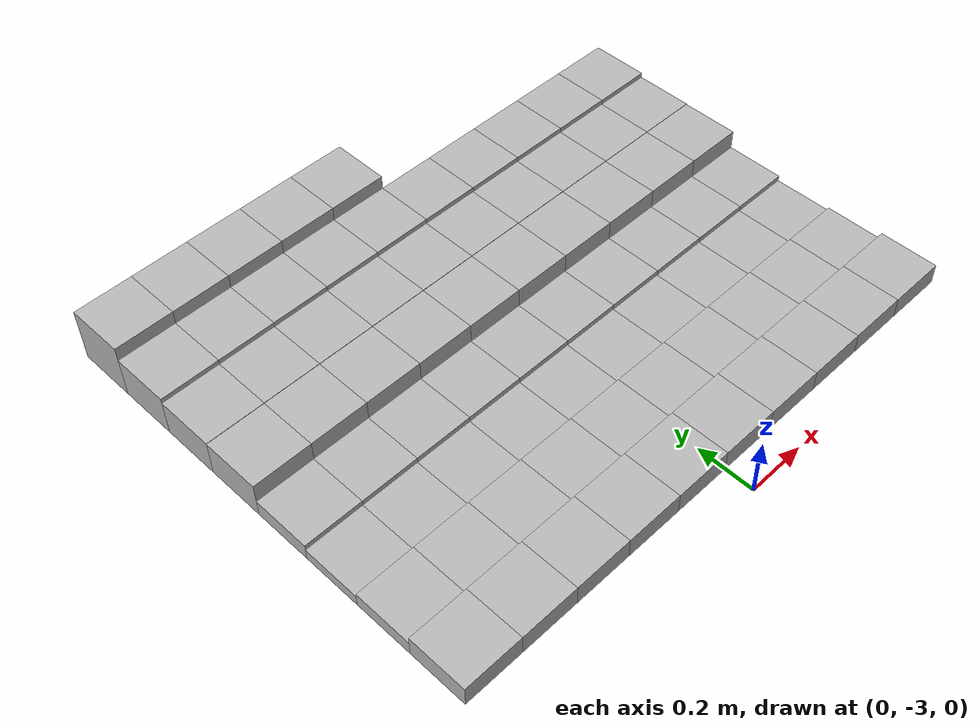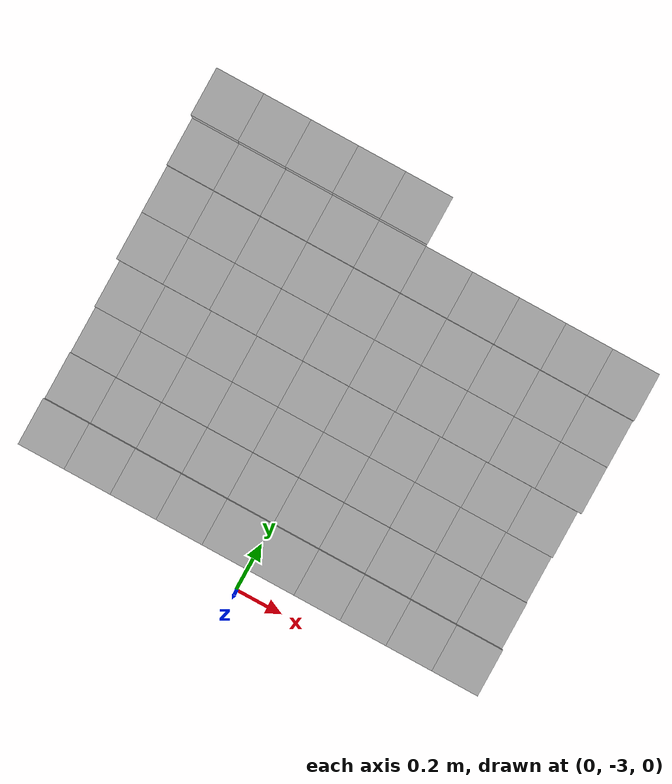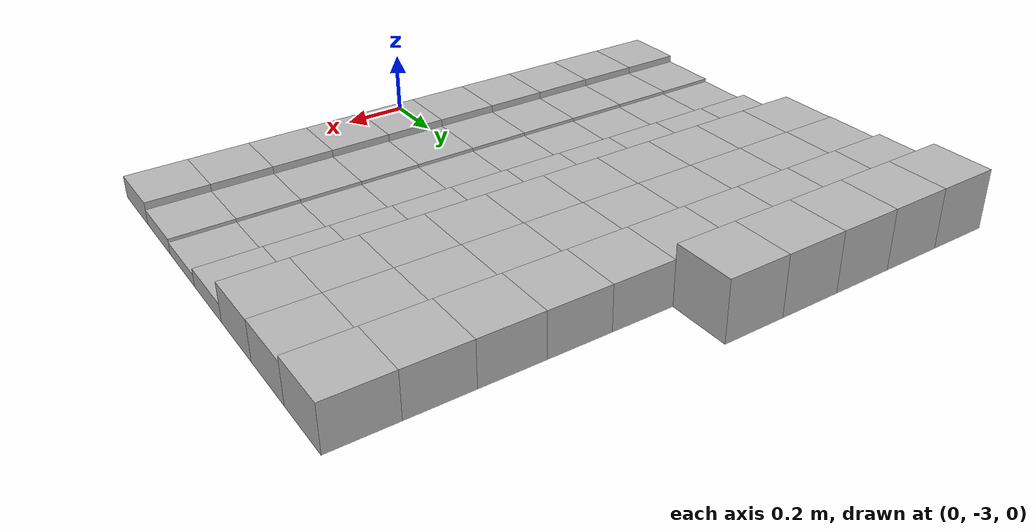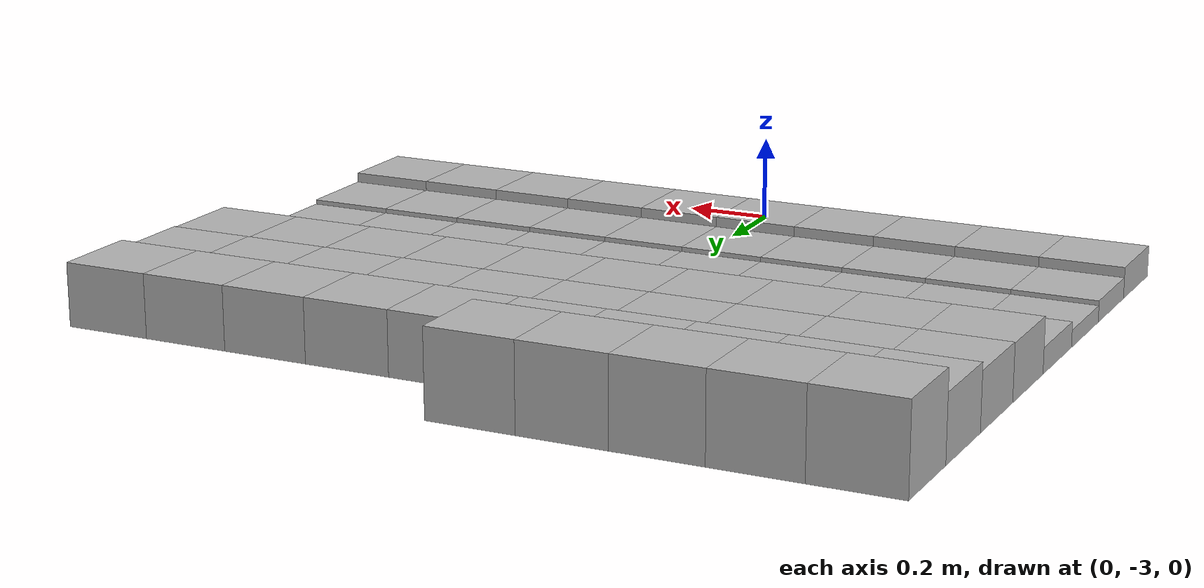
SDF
<sdf version="1.6">
 <model name="Terrain">
  <static>true</static>
  <link name="box_7_0">
   <pose>-0.9 -1.4 0.0967785819383 0 0 0</pose>
   <inertial>
    <mass>1.0</mass>
    <inertia><ixx>0.0</ixx><ixy>0.0</ixy><ixz>0.0</ixz><iyy>0.0</iyy><iyz>0.0</iyz><izz>0.0</izz></inertia>
   </inertial>
   <collision name="collision"><geometry><box><size>0.2 0.2 0.193557163877</size></box></geometry></collision>
   <visual name="visual"><geometry><box><size>0.2 0.2 0.193557163877</size></box></geometry></visual>
  </link>
  <link name="box_7_1">
   <pose>-0.7 -1.4 0.0967785819383 0 0 0</pose>
   <inertial>
    <mass>1.0</mass>
    <inertia><ixx>0.0</ixx><ixy>0.0</ixy><ixz>0.0</ixz><iyy>0.0</iyy><iyz>0.0</iyz><izz>0.0</izz></inertia>
   </inertial>
   <collision name="collision"><geometry><box><size>0.2 0.2 0.193557163877</size></box></geometry></collision>
   <visual name="visual"><geometry><box><size>0.2 0.2 0.193557163877</size></box></geometry></visual>
  </link>
  <link name="box_7_2">
   <pose>-0.5 -1.4 0.0967785819383 0 0 0</pose>
   <inertial>
    <mass>1.0</mass>
    <inertia><ixx>0.0</ixx><ixy>0.0</ixy><ixz>0.0</ixz><iyy>0.0</iyy><iyz>0.0</iyz><izz>0.0</izz></inertia>
   </inertial>
   <collision name="collision"><geometry><box><size>0.2 0.2 0.193557163877</size></box></geometry></collision>
   <visual name="visual"><geometry><box><size>0.2 0.2 0.193557163877</size></box></geometry></visual>
  </link>
  <link name="box_7_3">
   <pose>-0.3 -1.4 0.0967785819383 0 0 0</pose>
   <inertial>
    <mass>1.0</mass>
    <inertia><ixx>0.0</ixx><ixy>0.0</ixy><ixz>0.0</ixz><iyy>0.0</iyy><iyz>0.0</iyz><izz>0.0</izz></inertia>
   </inertial>
   <collision name="collision"><geometry><box><size>0.2 0.2 0.193557163877</size></box></geometry></collision>
   <visual name="visual"><geometry><box><size>0.2 0.2 0.193557163877</size></box></geometry></visual>
  </link>
  <link name="box_7_4">
   <pose>-0.1 -1.4 0.0967785819383 0 0 0</pose>
   <inertial>
    <mass>1.0</mass>
    <inertia><ixx>0.0</ixx><ixy>0.0</ixy><ixz>0.0</ixz><iyy>0.0</iyy><iyz>0.0</iyz><izz>0.0</izz></inertia>
   </inertial>
   <collision name="collision"><geometry><box><size>0.2 0.2 0.193557163877</size></box></geometry></collision>
   <visual name="visual"><geometry><box><size>0.2 0.2 0.193557163877</size></box></geometry></visual>
  </link>
  <link name="box_8_0">
   <pose>-0.9 -1.6 0.0724558491986 0 0 0</pose>
   <inertial>
    <mass>1.0</mass>
    <inertia><ixx>0.0</ixx><ixy>0.0</ixy><ixz>0.0</ixz><iyy>0.0</iyy><iyz>0.0</iyz><izz>0.0</izz></inertia>
   </inertial>
   <collision name="collision"><geometry><box><size>0.2 0.2 0.144911698397</size></box></geometry></collision>
   <visual name="visual"><geometry><box><size>0.2 0.2 0.144911698397</size></box></geometry></visual>
  </link>
  <link name="box_8_1">
   <pose>-0.7 -1.6 0.0724558491986 0 0 0</pose>
   <inertial>
    <mass>1.0</mass>
    <inertia><ixx>0.0</ixx><ixy>0.0</ixy><ixz>0.0</ixz><iyy>0.0</iyy><iyz>0.0</iyz><izz>0.0</izz></inertia>
   </inertial>
   <collision name="collision"><geometry><box><size>0.2 0.2 0.144911698397</size></box></geometry></collision>
   <visual name="visual"><geometry><box><size>0.2 0.2 0.144911698397</size></box></geometry></visual>
  </link>
  <link name="box_8_2">
   <pose>-0.5 -1.6 0.0724558491986 0 0 0</pose>
   <inertial>
    <mass>1.0</mass>
    <inertia><ixx>0.0</ixx><ixy>0.0</ixy><ixz>0.0</ixz><iyy>0.0</iyy><iyz>0.0</iyz><izz>0.0</izz></inertia>
   </inertial>
   <collision name="collision"><geometry><box><size>0.2 0.2 0.144911698397</size></box></geometry></collision>
   <visual name="visual"><geometry><box><size>0.2 0.2 0.144911698397</size></box></geometry></visual>
  </link>
  <link name="box_8_3">
   <pose>-0.3 -1.6 0.0724558491986 0 0 0</pose>
   <inertial>
    <mass>1.0</mass>
    <inertia><ixx>0.0</ixx><ixy>0.0</ixy><ixz>0.0</ixz><iyy>0.0</iyy><iyz>0.0</iyz><izz>0.0</izz></inertia>
   </inertial>
   <collision name="collision"><geometry><box><size>0.2 0.2 0.144911698397</size></box></geometry></collision>
   <visual name="visual"><geometry><box><size>0.2 0.2 0.144911698397</size></box></geometry></visual>
  </link>
  <link name="box_8_4">
   <pose>-0.1 -1.6 0.0724558491986 0 0 0</pose>
   <inertial>
    <mass>1.0</mass>
    <inertia><ixx>0.0</ixx><ixy>0.0</ixy><ixz>0.0</ixz><iyy>0.0</iyy><iyz>0.0</iyz><izz>0.0</izz></inertia>
   </inertial>
   <collision name="collision"><geometry><box><size>0.2 0.2 0.144911698397</size></box></geometry></collision>
   <visual name="visual"><geometry><box><size>0.2 0.2 0.144911698397</size></box></geometry></visual>
  </link>
  <link name="box_8_5">
   <pose>0.1 -1.6 0.0724558491986 0 0 0</pose>
   <inertial>
    <mass>1.0</mass>
    <inertia><ixx>0.0</ixx><ixy>0.0</ixy><ixz>0.0</ixz><iyy>0.0</iyy><iyz>0.0</iyz><izz>0.0</izz></inertia>
   </inertial>
   <collision name="collision"><geometry><box><size>0.2 0.2 0.144911698397</size></box></geometry></collision>
   <visual name="visual"><geometry><box><size>0.2 0.2 0.144911698397</size></box></geometry></visual>
  </link>
  <link name="box_8_6">
   <pose>0.3 -1.6 0.0724558491986 0 0 0</pose>
   <inertial>
    <mass>1.0</mass>
    <inertia><ixx>0.0</ixx><ixy>0.0</ixy><ixz>0.0</ixz><iyy>0.0</iyy><iyz>0.0</iyz><izz>0.0</izz></inertia>
   </inertial>
   <collision name="collision"><geometry><box><size>0.2 0.2 0.144911698397</size></box></geometry></collision>
   <visual name="visual"><geometry><box><size>0.2 0.2 0.144911698397</size></box></geometry></visual>
  </link>
  <link name="box_8_7">
   <pose>0.5 -1.6 0.0724558491986 0 0 0</pose>
   <inertial>
    <mass>1.0</mass>
    <inertia><ixx>0.0</ixx><ixy>0.0</ixy><ixz>0.0</ixz><iyy>0.0</iyy><iyz>0.0</iyz><izz>0.0</izz></inertia>
   </inertial>
   <collision name="collision"><geometry><box><size>0.2 0.2 0.144911698397</size></box></geometry></collision>
   <visual name="visual"><geometry><box><size>0.2 0.2 0.144911698397</size></box></geometry></visual>
  </link>
  <link name="box_8_8">
   <pose>0.7 -1.6 0.0724558491986 0 0 0</pose>
   <inertial>
    <mass>1.0</mass>
    <inertia><ixx>0.0</ixx><ixy>0.0</ixy><ixz>0.0</ixz><iyy>0.0</iyy><iyz>0.0</iyz><izz>0.0</izz></inertia>
   </inertial>
   <collision name="collision"><geometry><box><size>0.2 0.2 0.144911698397</size></box></geometry></collision>
   <visual name="visual"><geometry><box><size>0.2 0.2 0.144911698397</size></box></geometry></visual>
  </link>
  <link name="box_8_9">
   <pose>0.9 -1.6 0.0724558491986 0 0 0</pose>
   <inertial>
    <mass>1.0</mass>
    <inertia><ixx>0.0</ixx><ixy>0.0</ixy><ixz>0.0</ixz><iyy>0.0</iyy><iyz>0.0</iyz><izz>0.0</izz></inertia>
   </inertial>
   <collision name="collision"><geometry><box><size>0.2 0.2 0.144911698397</size></box></geometry></collision>
   <visual name="visual"><geometry><box><size>0.2 0.2 0.144911698397</size></box></geometry></visual>
  </link>
  <link name="box_9_0">
   <pose>-0.9 -1.8 0.0637855316115 0 0 0</pose>
   <inertial>
    <mass>1.0</mass>
    <inertia><ixx>0.0</ixx><ixy>0.0</ixy><ixz>0.0</ixz><iyy>0.0</iyy><iyz>0.0</iyz><izz>0.0</izz></inertia>
   </inertial>
   <collision name="collision"><geometry><box><size>0.2 0.2 0.127571063223</size></box></geometry></collision>
   <visual name="visual"><geometry><box><size>0.2 0.2 0.127571063223</size></box></geometry></visual>
  </link>
  <link name="box_9_1">
   <pose>-0.7 -1.8 0.0637855316115 0 0 0</pose>
   <inertial>
    <mass>1.0</mass>
    <inertia><ixx>0.0</ixx><ixy>0.0</ixy><ixz>0.0</ixz><iyy>0.0</iyy><iyz>0.0</iyz><izz>0.0</izz></inertia>
   </inertial>
   <collision name="collision"><geometry><box><size>0.2 0.2 0.127571063223</size></box></geometry></collision>
   <visual name="visual"><geometry><box><size>0.2 0.2 0.127571063223</size></box></geometry></visual>
  </link>
  <link name="box_9_2">
   <pose>-0.5 -1.8 0.0637855316115 0 0 0</pose>
   <inertial>
    <mass>1.0</mass>
    <inertia><ixx>0.0</ixx><ixy>0.0</ixy><ixz>0.0</ixz><iyy>0.0</iyy><iyz>0.0</iyz><izz>0.0</izz></inertia>
   </inertial>
   <collision name="collision"><geometry><box><size>0.2 0.2 0.127571063223</size></box></geometry></collision>
   <visual name="visual"><geometry><box><size>0.2 0.2 0.127571063223</size></box></geometry></visual>
  </link>
  <link name="box_9_3">
   <pose>-0.3 -1.8 0.0637855316115 0 0 0</pose>
   <inertial>
    <mass>1.0</mass>
    <inertia><ixx>0.0</ixx><ixy>0.0</ixy><ixz>0.0</ixz><iyy>0.0</iyy><iyz>0.0</iyz><izz>0.0</izz></inertia>
   </inertial>
   <collision name="collision"><geometry><box><size>0.2 0.2 0.127571063223</size></box></geometry></collision>
   <visual name="visual"><geometry><box><size>0.2 0.2 0.127571063223</size></box></geometry></visual>
  </link>
  <link name="box_9_4">
   <pose>-0.1 -1.8 0.0637855316115 0 0 0</pose>
   <inertial>
    <mass>1.0</mass>
    <inertia><ixx>0.0</ixx><ixy>0.0</ixy><ixz>0.0</ixz><iyy>0.0</iyy><iyz>0.0</iyz><izz>0.0</izz></inertia>
   </inertial>
   <collision name="collision"><geometry><box><size>0.2 0.2 0.127571063223</size></box></geometry></collision>
   <visual name="visual"><geometry><box><size>0.2 0.2 0.127571063223</size></box></geometry></visual>
  </link>
  <link name="box_9_5">
   <pose>0.1 -1.8 0.0637855316115 0 0 0</pose>
   <inertial>
    <mass>1.0</mass>
    <inertia><ixx>0.0</ixx><ixy>0.0</ixy><ixz>0.0</ixz><iyy>0.0</iyy><iyz>0.0</iyz><izz>0.0</izz></inertia>
   </inertial>
   <collision name="collision"><geometry><box><size>0.2 0.2 0.127571063223</size></box></geometry></collision>
   <visual name="visual"><geometry><box><size>0.2 0.2 0.127571063223</size></box></geometry></visual>
  </link>
  <link name="box_9_6">
   <pose>0.3 -1.8 0.0637855316115 0 0 0</pose>
   <inertial>
    <mass>1.0</mass>
    <inertia><ixx>0.0</ixx><ixy>0.0</ixy><ixz>0.0</ixz><iyy>0.0</iyy><iyz>0.0</iyz><izz>0.0</izz></inertia>
   </inertial>
   <collision name="collision"><geometry><box><size>0.2 0.2 0.127571063223</size></box></geometry></collision>
   <visual name="visual"><geometry><box><size>0.2 0.2 0.127571063223</size></box></geometry></visual>
  </link>
  <link name="box_9_7">
   <pose>0.5 -1.8 0.0637855316115 0 0 0</pose>
   <inertial>
    <mass>1.0</mass>
    <inertia><ixx>0.0</ixx><ixy>0.0</ixy><ixz>0.0</ixz><iyy>0.0</iyy><iyz>0.0</iyz><izz>0.0</izz></inertia>
   </inertial>
   <collision name="collision"><geometry><box><size>0.2 0.2 0.127571063223</size></box></geometry></collision>
   <visual name="visual"><geometry><box><size>0.2 0.2 0.127571063223</size></box></geometry></visual>
  </link>
  <link name="box_9_8">
   <pose>0.7 -1.8 0.0637855316115 0 0 0</pose>
   <inertial>
    <mass>1.0</mass>
    <inertia><ixx>0.0</ixx><ixy>0.0</ixy><ixz>0.0</ixz><iyy>0.0</iyy><iyz>0.0</iyz><izz>0.0</izz></inertia>
   </inertial>
   <collision name="collision"><geometry><box><size>0.2 0.2 0.127571063223</size></box></geometry></collision>
   <visual name="visual"><geometry><box><size>0.2 0.2 0.127571063223</size></box></geometry></visual>
  </link>
  <link name="box_9_9">
   <pose>0.9 -1.8 0.0637855316115 0 0 0</pose>
   <inertial>
    <mass>1.0</mass>
    <inertia><ixx>0.0</ixx><ixy>0.0</ixy><ixz>0.0</ixz><iyy>0.0</iyy><iyz>0.0</iyz><izz>0.0</izz></inertia>
   </inertial>
   <collision name="collision"><geometry><box><size>0.2 0.2 0.127571063223</size></box></geometry></collision>
   <visual name="visual"><geometry><box><size>0.2 0.2 0.127571063223</size></box></geometry></visual>
  </link>
  <link name="box_10_0">
   <pose>-0.9 -2.0 0.0626749102557 0 0 0</pose>
   <inertial>
    <mass>1.0</mass>
    <inertia><ixx>0.0</ixx><ixy>0.0</ixy><ixz>0.0</ixz><iyy>0.0</iyy><iyz>0.0</iyz><izz>0.0</izz></inertia>
   </inertial>
   <collision name="collision"><geometry><box><size>0.2 0.2 0.125349820511</size></box></geometry></collision>
   <visual name="visual"><geometry><box><size>0.2 0.2 0.125349820511</size></box></geometry></visual>
  </link>
  <link name="box_10_1">
   <pose>-0.7 -2.0 0.0626749102557 0 0 0</pose>
   <inertial>
    <mass>1.0</mass>
    <inertia><ixx>0.0</ixx><ixy>0.0</ixy><ixz>0.0</ixz><iyy>0.0</iyy><iyz>0.0</iyz><izz>0.0</izz></inertia>
   </inertial>
   <collision name="collision"><geometry><box><size>0.2 0.2 0.125349820511</size></box></geometry></collision>
   <visual name="visual"><geometry><box><size>0.2 0.2 0.125349820511</size></box></geometry></visual>
  </link>
  <link name="box_10_2">
   <pose>-0.5 -2.0 0.0626749102557 0 0 0</pose>
   <inertial>
    <mass>1.0</mass>
    <inertia><ixx>0.0</ixx><ixy>0.0</ixy><ixz>0.0</ixz><iyy>0.0</iyy><iyz>0.0</iyz><izz>0.0</izz></inertia>
   </inertial>
   <collision name="collision"><geometry><box><size>0.2 0.2 0.125349820511</size></box></geometry></collision>
   <visual name="visual"><geometry><box><size>0.2 0.2 0.125349820511</size></box></geometry></visual>
  </link>
  <link name="box_10_3">
   <pose>-0.3 -2.0 0.0626749102557 0 0 0</pose>
   <inertial>
    <mass>1.0</mass>
    <inertia><ixx>0.0</ixx><ixy>0.0</ixy><ixz>0.0</ixz><iyy>0.0</iyy><iyz>0.0</iyz><izz>0.0</izz></inertia>
   </inertial>
   <collision name="collision"><geometry><box><size>0.2 0.2 0.125349820511</size></box></geometry></collision>
   <visual name="visual"><geometry><box><size>0.2 0.2 0.125349820511</size></box></geometry></visual>
  </link>
  <link name="box_10_4">
   <pose>-0.1 -2.0 0.0626749102557 0 0 0</pose>
   <inertial>
    <mass>1.0</mass>
    <inertia><ixx>0.0</ixx><ixy>0.0</ixy><ixz>0.0</ixz><iyy>0.0</iyy><iyz>0.0</iyz><izz>0.0</izz></inertia>
   </inertial>
   <collision name="collision"><geometry><box><size>0.2 0.2 0.125349820511</size></box></geometry></collision>
   <visual name="visual"><geometry><box><size>0.2 0.2 0.125349820511</size></box></geometry></visual>
  </link>
  <link name="box_10_5">
   <pose>0.1 -2.0 0.0626749102557 0 0 0</pose>
   <inertial>
    <mass>1.0</mass>
    <inertia><ixx>0.0</ixx><ixy>0.0</ixy><ixz>0.0</ixz><iyy>0.0</iyy><iyz>0.0</iyz><izz>0.0</izz></inertia>
   </inertial>
   <collision name="collision"><geometry><box><size>0.2 0.2 0.125349820511</size></box></geometry></collision>
   <visual name="visual"><geometry><box><size>0.2 0.2 0.125349820511</size></box></geometry></visual>
  </link>
  <link name="box_10_6">
   <pose>0.3 -2.0 0.0626749102557 0 0 0</pose>
   <inertial>
    <mass>1.0</mass>
    <inertia><ixx>0.0</ixx><ixy>0.0</ixy><ixz>0.0</ixz><iyy>0.0</iyy><iyz>0.0</iyz><izz>0.0</izz></inertia>
   </inertial>
   <collision name="collision"><geometry><box><size>0.2 0.2 0.125349820511</size></box></geometry></collision>
   <visual name="visual"><geometry><box><size>0.2 0.2 0.125349820511</size></box></geometry></visual>
  </link>
  <link name="box_10_7">
   <pose>0.5 -2.0 0.0626749102557 0 0 0</pose>
   <inertial>
    <mass>1.0</mass>
    <inertia><ixx>0.0</ixx><ixy>0.0</ixy><ixz>0.0</ixz><iyy>0.0</iyy><iyz>0.0</iyz><izz>0.0</izz></inertia>
   </inertial>
   <collision name="collision"><geometry><box><size>0.2 0.2 0.125349820511</size></box></geometry></collision>
   <visual name="visual"><geometry><box><size>0.2 0.2 0.125349820511</size></box></geometry></visual>
  </link>
  <link name="box_10_8">
   <pose>0.7 -2.0 0.0626749102557 0 0 0</pose>
   <inertial>
    <mass>1.0</mass>
    <inertia><ixx>0.0</ixx><ixy>0.0</ixy><ixz>0.0</ixz><iyy>0.0</iyy><iyz>0.0</iyz><izz>0.0</izz></inertia>
   </inertial>
   <collision name="collision"><geometry><box><size>0.2 0.2 0.125349820511</size></box></geometry></collision>
   <visual name="visual"><geometry><box><size>0.2 0.2 0.125349820511</size></box></geometry></visual>
  </link>
  <link name="box_10_9">
   <pose>0.9 -2.0 0.0626749102557 0 0 0</pose>
   <inertial>
    <mass>1.0</mass>
    <inertia><ixx>0.0</ixx><ixy>0.0</ixy><ixz>0.0</ixz><iyy>0.0</iyy><iyz>0.0</iyz><izz>0.0</izz></inertia>
   </inertial>
   <collision name="collision"><geometry><box><size>0.2 0.2 0.125349820511</size></box></geometry></collision>
   <visual name="visual"><geometry><box><size>0.2 0.2 0.125349820511</size></box></geometry></visual>
  </link>
  <link name="box_11_0">
   <pose>-0.9 -2.2 0.0289738068318 0 0 0</pose>
   <inertial>
    <mass>1.0</mass>
    <inertia><ixx>0.0</ixx><ixy>0.0</ixy><ixz>0.0</ixz><iyy>0.0</iyy><iyz>0.0</iyz><izz>0.0</izz></inertia>
   </inertial>
   <collision name="collision"><geometry><box><size>0.2 0.2 0.0579476136637</size></box></geometry></collision>
   <visual name="visual"><geometry><box><size>0.2 0.2 0.0579476136637</size></box></geometry></visual>
  </link>
  <link name="box_11_1">
   <pose>-0.7 -2.2 0.0289738068318 0 0 0</pose>
   <inertial>
    <mass>1.0</mass>
    <inertia><ixx>0.0</ixx><ixy>0.0</ixy><ixz>0.0</ixz><iyy>0.0</iyy><iyz>0.0</iyz><izz>0.0</izz></inertia>
   </inertial>
   <collision name="collision"><geometry><box><size>0.2 0.2 0.0579476136637</size></box></geometry></collision>
   <visual name="visual"><geometry><box><size>0.2 0.2 0.0579476136637</size></box></geometry></visual>
  </link>
  <link name="box_11_2">
   <pose>-0.5 -2.2 0.0289738068318 0 0 0</pose>
   <inertial>
    <mass>1.0</mass>
    <inertia><ixx>0.0</ixx><ixy>0.0</ixy><ixz>0.0</ixz><iyy>0.0</iyy><iyz>0.0</iyz><izz>0.0</izz></inertia>
   </inertial>
   <collision name="collision"><geometry><box><size>0.2 0.2 0.0579476136637</size></box></geometry></collision>
   <visual name="visual"><geometry><box><size>0.2 0.2 0.0579476136637</size></box></geometry></visual>
  </link>
  <link name="box_11_3">
   <pose>-0.3 -2.2 0.0289738068318 0 0 0</pose>
   <inertial>
    <mass>1.0</mass>
    <inertia><ixx>0.0</ixx><ixy>0.0</ixy><ixz>0.0</ixz><iyy>0.0</iyy><iyz>0.0</iyz><izz>0.0</izz></inertia>
   </inertial>
   <collision name="collision"><geometry><box><size>0.2 0.2 0.0579476136637</size></box></geometry></collision>
   <visual name="visual"><geometry><box><size>0.2 0.2 0.0579476136637</size></box></geometry></visual>
  </link>
  <link name="box_11_4">
   <pose>-0.1 -2.2 0.0289738068318 0 0 0</pose>
   <inertial>
    <mass>1.0</mass>
    <inertia><ixx>0.0</ixx><ixy>0.0</ixy><ixz>0.0</ixz><iyy>0.0</iyy><iyz>0.0</iyz><izz>0.0</izz></inertia>
   </inertial>
   <collision name="collision"><geometry><box><size>0.2 0.2 0.0579476136637</size></box></geometry></collision>
   <visual name="visual"><geometry><box><size>0.2 0.2 0.0579476136637</size></box></geometry></visual>
  </link>
  <link name="box_11_5">
   <pose>0.1 -2.2 0.0289738068318 0 0 0</pose>
   <inertial>
    <mass>1.0</mass>
    <inertia><ixx>0.0</ixx><ixy>0.0</ixy><ixz>0.0</ixz><iyy>0.0</iyy><iyz>0.0</iyz><izz>0.0</izz></inertia>
   </inertial>
   <collision name="collision"><geometry><box><size>0.2 0.2 0.0579476136637</size></box></geometry></collision>
   <visual name="visual"><geometry><box><size>0.2 0.2 0.0579476136637</size></box></geometry></visual>
  </link>
  <link name="box_11_6">
   <pose>0.3 -2.2 0.0289738068318 0 0 0</pose>
   <inertial>
    <mass>1.0</mass>
    <inertia><ixx>0.0</ixx><ixy>0.0</ixy><ixz>0.0</ixz><iyy>0.0</iyy><iyz>0.0</iyz><izz>0.0</izz></inertia>
   </inertial>
   <collision name="collision"><geometry><box><size>0.2 0.2 0.0579476136637</size></box></geometry></collision>
   <visual name="visual"><geometry><box><size>0.2 0.2 0.0579476136637</size></box></geometry></visual>
  </link>
  <link name="box_11_7">
   <pose>0.5 -2.2 0.0289738068318 0 0 0</pose>
   <inertial>
    <mass>1.0</mass>
    <inertia><ixx>0.0</ixx><ixy>0.0</ixy><ixz>0.0</ixz><iyy>0.0</iyy><iyz>0.0</iyz><izz>0.0</izz></inertia>
   </inertial>
   <collision name="collision"><geometry><box><size>0.2 0.2 0.0579476136637</size></box></geometry></collision>
   <visual name="visual"><geometry><box><size>0.2 0.2 0.0579476136637</size></box></geometry></visual>
  </link>
  <link name="box_11_8">
   <pose>0.7 -2.2 0.0289738068318 0 0 0</pose>
   <inertial>
    <mass>1.0</mass>
    <inertia><ixx>0.0</ixx><ixy>0.0</ixy><ixz>0.0</ixz><iyy>0.0</iyy><iyz>0.0</iyz><izz>0.0</izz></inertia>
   </inertial>
   <collision name="collision"><geometry><box><size>0.2 0.2 0.0579476136637</size></box></geometry></collision>
   <visual name="visual"><geometry><box><size>0.2 0.2 0.0579476136637</size></box></geometry></visual>
  </link>
  <link name="box_11_9">
   <pose>0.9 -2.2 0.0289738068318 0 0 0</pose>
   <inertial>
    <mass>1.0</mass>
    <inertia><ixx>0.0</ixx><ixy>0.0</ixy><ixz>0.0</ixz><iyy>0.0</iyy><iyz>0.0</iyz><izz>0.0</izz></inertia>
   </inertial>
   <collision name="collision"><geometry><box><size>0.2 0.2 0.0579476136637</size></box></geometry></collision>
   <visual name="visual"><geometry><box><size>0.2 0.2 0.0579476136637</size></box></geometry></visual>
  </link>
  <link name="box_12_0">
   <pose>-0.9 -2.4 0.0193741443732 0 0 0</pose>
   <inertial>
    <mass>1.0</mass>
    <inertia><ixx>0.0</ixx><ixy>0.0</ixy><ixz>0.0</ixz><iyy>0.0</iyy><iyz>0.0</iyz><izz>0.0</izz></inertia>
   </inertial>
   <collision name="collision"><geometry><box><size>0.2 0.2 0.0387482887465</size></box></geometry></collision>
   <visual name="visual"><geometry><box><size>0.2 0.2 0.0387482887465</size></box></geometry></visual>
  </link>
  <link name="box_12_1">
   <pose>-0.7 -2.4 0.0193741443732 0 0 0</pose>
   <inertial>
    <mass>1.0</mass>
    <inertia><ixx>0.0</ixx><ixy>0.0</ixy><ixz>0.0</ixz><iyy>0.0</iyy><iyz>0.0</iyz><izz>0.0</izz></inertia>
   </inertial>
   <collision name="collision"><geometry><box><size>0.2 0.2 0.0387482887465</size></box></geometry></collision>
   <visual name="visual"><geometry><box><size>0.2 0.2 0.0387482887465</size></box></geometry></visual>
  </link>
  <link name="box_12_2">
   <pose>-0.5 -2.4 0.0193741443732 0 0 0</pose>
   <inertial>
    <mass>1.0</mass>
    <inertia><ixx>0.0</ixx><ixy>0.0</ixy><ixz>0.0</ixz><iyy>0.0</iyy><iyz>0.0</iyz><izz>0.0</izz></inertia>
   </inertial>
   <collision name="collision"><geometry><box><size>0.2 0.2 0.0387482887465</size></box></geometry></collision>
   <visual name="visual"><geometry><box><size>0.2 0.2 0.0387482887465</size></box></geometry></visual>
  </link>
  <link name="box_12_3">
   <pose>-0.3 -2.4 0.0193741443732 0 0 0</pose>
   <inertial>
    <mass>1.0</mass>
    <inertia><ixx>0.0</ixx><ixy>0.0</ixy><ixz>0.0</ixz><iyy>0.0</iyy><iyz>0.0</iyz><izz>0.0</izz></inertia>
   </inertial>
   <collision name="collision"><geometry><box><size>0.2 0.2 0.0387482887465</size></box></geometry></collision>
   <visual name="visual"><geometry><box><size>0.2 0.2 0.0387482887465</size></box></geometry></visual>
  </link>
  <link name="box_12_4">
   <pose>-0.1 -2.4 0.0193741443732 0 0 0</pose>
   <inertial>
    <mass>1.0</mass>
    <inertia><ixx>0.0</ixx><ixy>0.0</ixy><ixz>0.0</ixz><iyy>0.0</iyy><iyz>0.0</iyz><izz>0.0</izz></inertia>
   </inertial>
   <collision name="collision"><geometry><box><size>0.2 0.2 0.0387482887465</size></box></geometry></collision>
   <visual name="visual"><geometry><box><size>0.2 0.2 0.0387482887465</size></box></geometry></visual>
  </link>
  <link name="box_12_5">
   <pose>0.1 -2.4 0.0193741443732 0 0 0</pose>
   <inertial>
    <mass>1.0</mass>
    <inertia><ixx>0.0</ixx><ixy>0.0</ixy><ixz>0.0</ixz><iyy>0.0</iyy><iyz>0.0</iyz><izz>0.0</izz></inertia>
   </inertial>
   <collision name="collision"><geometry><box><size>0.2 0.2 0.0387482887465</size></box></geometry></collision>
   <visual name="visual"><geometry><box><size>0.2 0.2 0.0387482887465</size></box></geometry></visual>
  </link>
  <link name="box_12_6">
   <pose>0.3 -2.4 0.0193741443732 0 0 0</pose>
   <inertial>
    <mass>1.0</mass>
    <inertia><ixx>0.0</ixx><ixy>0.0</ixy><ixz>0.0</ixz><iyy>0.0</iyy><iyz>0.0</iyz><izz>0.0</izz></inertia>
   </inertial>
   <collision name="collision"><geometry><box><size>0.2 0.2 0.0387482887465</size></box></geometry></collision>
   <visual name="visual"><geometry><box><size>0.2 0.2 0.0387482887465</size></box></geometry></visual>
  </link>
  <link name="box_12_7">
   <pose>0.5 -2.4 0.0193741443732 0 0 0</pose>
   <inertial>
    <mass>1.0</mass>
    <inertia><ixx>0.0</ixx><ixy>0.0</ixy><ixz>0.0</ixz><iyy>0.0</iyy><iyz>0.0</iyz><izz>0.0</izz></inertia>
   </inertial>
   <collision name="collision"><geometry><box><size>0.2 0.2 0.0387482887465</size></box></geometry></collision>
   <visual name="visual"><geometry><box><size>0.2 0.2 0.0387482887465</size></box></geometry></visual>
  </link>
  <link name="box_12_8">
   <pose>0.7 -2.4 0.0193741443732 0 0 0</pose>
   <inertial>
    <mass>1.0</mass>
    <inertia><ixx>0.0</ixx><ixy>0.0</ixy><ixz>0.0</ixz><iyy>0.0</iyy><iyz>0.0</iyz><izz>0.0</izz></inertia>
   </inertial>
   <collision name="collision"><geometry><box><size>0.2 0.2 0.0387482887465</size></box></geometry></collision>
   <visual name="visual"><geometry><box><size>0.2 0.2 0.0387482887465</size></box></geometry></visual>
  </link>
  <link name="box_12_9">
   <pose>0.9 -2.4 0.0193741443732 0 0 0</pose>
   <inertial>
    <mass>1.0</mass>
    <inertia><ixx>0.0</ixx><ixy>0.0</ixy><ixz>0.0</ixz><iyy>0.0</iyy><iyz>0.0</iyz><izz>0.0</izz></inertia>
   </inertial>
   <collision name="collision"><geometry><box><size>0.2 0.2 0.0387482887465</size></box></geometry></collision>
   <visual name="visual"><geometry><box><size>0.2 0.2 0.0387482887465</size></box></geometry></visual>
  </link>
  <link name="box_13_0">
   <pose>-0.9 -2.6 0.0247963204589 0 0 0</pose>
   <inertial>
    <mass>1.0</mass>
    <inertia><ixx>0.0</ixx><ixy>0.0</ixy><ixz>0.0</ixz><iyy>0.0</iyy><iyz>0.0</iyz><izz>0.0</izz></inertia>
   </inertial>
   <collision name="collision"><geometry><box><size>0.2 0.2 0.0495926409178</size></box></geometry></collision>
   <visual name="visual"><geometry><box><size>0.2 0.2 0.0495926409178</size></box></geometry></visual>
  </link>
  <link name="box_13_1">
   <pose>-0.7 -2.6 0.0247963204589 0 0 0</pose>
   <inertial>
    <mass>1.0</mass>
    <inertia><ixx>0.0</ixx><ixy>0.0</ixy><ixz>0.0</ixz><iyy>0.0</iyy><iyz>0.0</iyz><izz>0.0</izz></inertia>
   </inertial>
   <collision name="collision"><geometry><box><size>0.2 0.2 0.0495926409178</size></box></geometry></collision>
   <visual name="visual"><geometry><box><size>0.2 0.2 0.0495926409178</size></box></geometry></visual>
  </link>
  <link name="box_13_2">
   <pose>-0.5 -2.6 0.0247963204589 0 0 0</pose>
   <inertial>
    <mass>1.0</mass>
    <inertia><ixx>0.0</ixx><ixy>0.0</ixy><ixz>0.0</ixz><iyy>0.0</iyy><iyz>0.0</iyz><izz>0.0</izz></inertia>
   </inertial>
   <collision name="collision"><geometry><box><size>0.2 0.2 0.0495926409178</size></box></geometry></collision>
   <visual name="visual"><geometry><box><size>0.2 0.2 0.0495926409178</size></box></geometry></visual>
  </link>
  <link name="box_13_3">
   <pose>-0.3 -2.6 0.0247963204589 0 0 0</pose>
   <inertial>
    <mass>1.0</mass>
    <inertia><ixx>0.0</ixx><ixy>0.0</ixy><ixz>0.0</ixz><iyy>0.0</iyy><iyz>0.0</iyz><izz>0.0</izz></inertia>
   </inertial>
   <collision name="collision"><geometry><box><size>0.2 0.2 0.0495926409178</size></box></geometry></collision>
   <visual name="visual"><geometry><box><size>0.2 0.2 0.0495926409178</size></box></geometry></visual>
  </link>
  <link name="box_13_4">
   <pose>-0.1 -2.6 0.0247963204589 0 0 0</pose>
   <inertial>
    <mass>1.0</mass>
    <inertia><ixx>0.0</ixx><ixy>0.0</ixy><ixz>0.0</ixz><iyy>0.0</iyy><iyz>0.0</iyz><izz>0.0</izz></inertia>
   </inertial>
   <collision name="collision"><geometry><box><size>0.2 0.2 0.0495926409178</size></box></geometry></collision>
   <visual name="visual"><geometry><box><size>0.2 0.2 0.0495926409178</size></box></geometry></visual>
  </link>
  <link name="box_13_5">
   <pose>0.1 -2.6 0.0247963204589 0 0 0</pose>
   <inertial>
    <mass>1.0</mass>
    <inertia><ixx>0.0</ixx><ixy>0.0</ixy><ixz>0.0</ixz><iyy>0.0</iyy><iyz>0.0</iyz><izz>0.0</izz></inertia>
   </inertial>
   <collision name="collision"><geometry><box><size>0.2 0.2 0.0495926409178</size></box></geometry></collision>
   <visual name="visual"><geometry><box><size>0.2 0.2 0.0495926409178</size></box></geometry></visual>
  </link>
  <link name="box_13_6">
   <pose>0.3 -2.6 0.0247963204589 0 0 0</pose>
   <inertial>
    <mass>1.0</mass>
    <inertia><ixx>0.0</ixx><ixy>0.0</ixy><ixz>0.0</ixz><iyy>0.0</iyy><iyz>0.0</iyz><izz>0.0</izz></inertia>
   </inertial>
   <collision name="collision"><geometry><box><size>0.2 0.2 0.0495926409178</size></box></geometry></collision>
   <visual name="visual"><geometry><box><size>0.2 0.2 0.0495926409178</size></box></geometry></visual>
  </link>
  <link name="box_13_7">
   <pose>0.5 -2.6 0.0247963204589 0 0 0</pose>
   <inertial>
    <mass>1.0</mass>
    <inertia><ixx>0.0</ixx><ixy>0.0</ixy><ixz>0.0</ixz><iyy>0.0</iyy><iyz>0.0</iyz><izz>0.0</izz></inertia>
   </inertial>
   <collision name="collision"><geometry><box><size>0.2 0.2 0.0495926409178</size></box></geometry></collision>
   <visual name="visual"><geometry><box><size>0.2 0.2 0.0495926409178</size></box></geometry></visual>
  </link>
  <link name="box_13_8">
   <pose>0.7 -2.6 0.0247963204589 0 0 0</pose>
   <inertial>
    <mass>1.0</mass>
    <inertia><ixx>0.0</ixx><ixy>0.0</ixy><ixz>0.0</ixz><iyy>0.0</iyy><iyz>0.0</iyz><izz>0.0</izz></inertia>
   </inertial>
   <collision name="collision"><geometry><box><size>0.2 0.2 0.0495926409178</size></box></geometry></collision>
   <visual name="visual"><geometry><box><size>0.2 0.2 0.0495926409178</size></box></geometry></visual>
  </link>
  <link name="box_13_9">
   <pose>0.9 -2.6 0.0247963204589 0 0 0</pose>
   <inertial>
    <mass>1.0</mass>
    <inertia><ixx>0.0</ixx><ixy>0.0</ixy><ixz>0.0</ixz><iyy>0.0</iyy><iyz>0.0</iyz><izz>0.0</izz></inertia>
   </inertial>
   <collision name="collision"><geometry><box><size>0.2 0.2 0.0495926409178</size></box></geometry></collision>
   <visual name="visual"><geometry><box><size>0.2 0.2 0.0495926409178</size></box></geometry></visual>
  </link>
  <link name="box_14_0">
   <pose>-0.9 -2.8 0.0366373821927 0 0 0</pose>
   <inertial>
    <mass>1.0</mass>
    <inertia><ixx>0.0</ixx><ixy>0.0</ixy><ixz>0.0</ixz><iyy>0.0</iyy><iyz>0.0</iyz><izz>0.0</izz></inertia>
   </inertial>
   <collision name="collision"><geometry><box><size>0.2 0.2 0.0732747643854</size></box></geometry></collision>
   <visual name="visual"><geometry><box><size>0.2 0.2 0.0732747643854</size></box></geometry></visual>
  </link>
  <link name="box_14_1">
   <pose>-0.7 -2.8 0.0366373821927 0 0 0</pose>
   <inertial>
    <mass>1.0</mass>
    <inertia><ixx>0.0</ixx><ixy>0.0</ixy><ixz>0.0</ixz><iyy>0.0</iyy><iyz>0.0</iyz><izz>0.0</izz></inertia>
   </inertial>
   <collision name="collision"><geometry><box><size>0.2 0.2 0.0732747643854</size></box></geometry></collision>
   <visual name="visual"><geometry><box><size>0.2 0.2 0.0732747643854</size></box></geometry></visual>
  </link>
  <link name="box_14_2">
   <pose>-0.5 -2.8 0.0366373821927 0 0 0</pose>
   <inertial>
    <mass>1.0</mass>
    <inertia><ixx>0.0</ixx><ixy>0.0</ixy><ixz>0.0</ixz><iyy>0.0</iyy><iyz>0.0</iyz><izz>0.0</izz></inertia>
   </inertial>
   <collision name="collision"><geometry><box><size>0.2 0.2 0.0732747643854</size></box></geometry></collision>
   <visual name="visual"><geometry><box><size>0.2 0.2 0.0732747643854</size></box></geometry></visual>
  </link>
  <link name="box_14_3">
   <pose>-0.3 -2.8 0.0366373821927 0 0 0</pose>
   <inertial>
    <mass>1.0</mass>
    <inertia><ixx>0.0</ixx><ixy>0.0</ixy><ixz>0.0</ixz><iyy>0.0</iyy><iyz>0.0</iyz><izz>0.0</izz></inertia>
   </inertial>
   <collision name="collision"><geometry><box><size>0.2 0.2 0.0732747643854</size></box></geometry></collision>
   <visual name="visual"><geometry><box><size>0.2 0.2 0.0732747643854</size></box></geometry></visual>
  </link>
  <link name="box_14_4">
   <pose>-0.1 -2.8 0.0366373821927 0 0 0</pose>
   <inertial>
    <mass>1.0</mass>
    <inertia><ixx>0.0</ixx><ixy>0.0</ixy><ixz>0.0</ixz><iyy>0.0</iyy><iyz>0.0</iyz><izz>0.0</izz></inertia>
   </inertial>
   <collision name="collision"><geometry><box><size>0.2 0.2 0.0732747643854</size></box></geometry></collision>
   <visual name="visual"><geometry><box><size>0.2 0.2 0.0732747643854</size></box></geometry></visual>
  </link>
  <link name="box_14_5">
   <pose>0.1 -2.8 0.0366373821927 0 0 0</pose>
   <inertial>
    <mass>1.0</mass>
    <inertia><ixx>0.0</ixx><ixy>0.0</ixy><ixz>0.0</ixz><iyy>0.0</iyy><iyz>0.0</iyz><izz>0.0</izz></inertia>
   </inertial>
   <collision name="collision"><geometry><box><size>0.2 0.2 0.0732747643854</size></box></geometry></collision>
   <visual name="visual"><geometry><box><size>0.2 0.2 0.0732747643854</size></box></geometry></visual>
  </link>
  <link name="box_14_6">
   <pose>0.3 -2.8 0.0366373821927 0 0 0</pose>
   <inertial>
    <mass>1.0</mass>
    <inertia><ixx>0.0</ixx><ixy>0.0</ixy><ixz>0.0</ixz><iyy>0.0</iyy><iyz>0.0</iyz><izz>0.0</izz></inertia>
   </inertial>
   <collision name="collision"><geometry><box><size>0.2 0.2 0.0732747643854</size></box></geometry></collision>
   <visual name="visual"><geometry><box><size>0.2 0.2 0.0732747643854</size></box></geometry></visual>
  </link>
  <link name="box_14_7">
   <pose>0.5 -2.8 0.0366373821927 0 0 0</pose>
   <inertial>
    <mass>1.0</mass>
    <inertia><ixx>0.0</ixx><ixy>0.0</ixy><ixz>0.0</ixz><iyy>0.0</iyy><iyz>0.0</iyz><izz>0.0</izz></inertia>
   </inertial>
   <collision name="collision"><geometry><box><size>0.2 0.2 0.0732747643854</size></box></geometry></collision>
   <visual name="visual"><geometry><box><size>0.2 0.2 0.0732747643854</size></box></geometry></visual>
  </link>
  <link name="box_14_8">
   <pose>0.7 -2.8 0.0366373821927 0 0 0</pose>
   <inertial>
    <mass>1.0</mass>
    <inertia><ixx>0.0</ixx><ixy>0.0</ixy><ixz>0.0</ixz><iyy>0.0</iyy><iyz>0.0</iyz><izz>0.0</izz></inertia>
   </inertial>
   <collision name="collision"><geometry><box><size>0.2 0.2 0.0732747643854</size></box></geometry></collision>
   <visual name="visual"><geometry><box><size>0.2 0.2 0.0732747643854</size></box></geometry></visual>
  </link>
  <link name="box_14_9">
   <pose>0.9 -2.8 0.0366373821927 0 0 0</pose>
   <inertial>
    <mass>1.0</mass>
    <inertia><ixx>0.0</ixx><ixy>0.0</ixy><ixz>0.0</ixz><iyy>0.0</iyy><iyz>0.0</iyz><izz>0.0</izz></inertia>
   </inertial>
   <collision name="collision"><geometry><box><size>0.2 0.2 0.0732747643854</size></box></geometry></collision>
   <visual name="visual"><geometry><box><size>0.2 0.2 0.0732747643854</size></box></geometry></visual>
  </link>
 </model>
</sdf>
